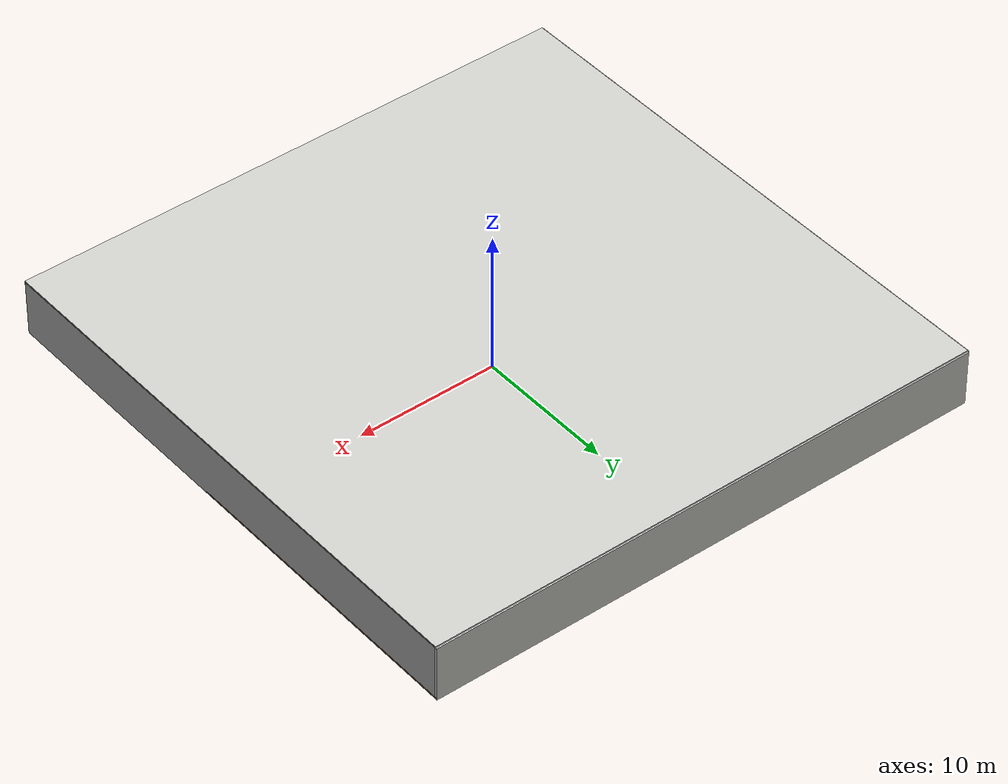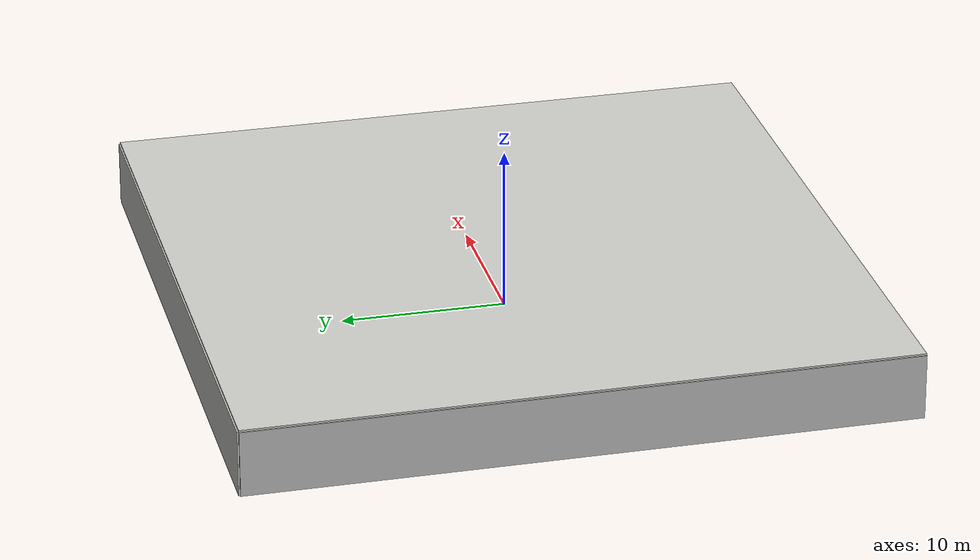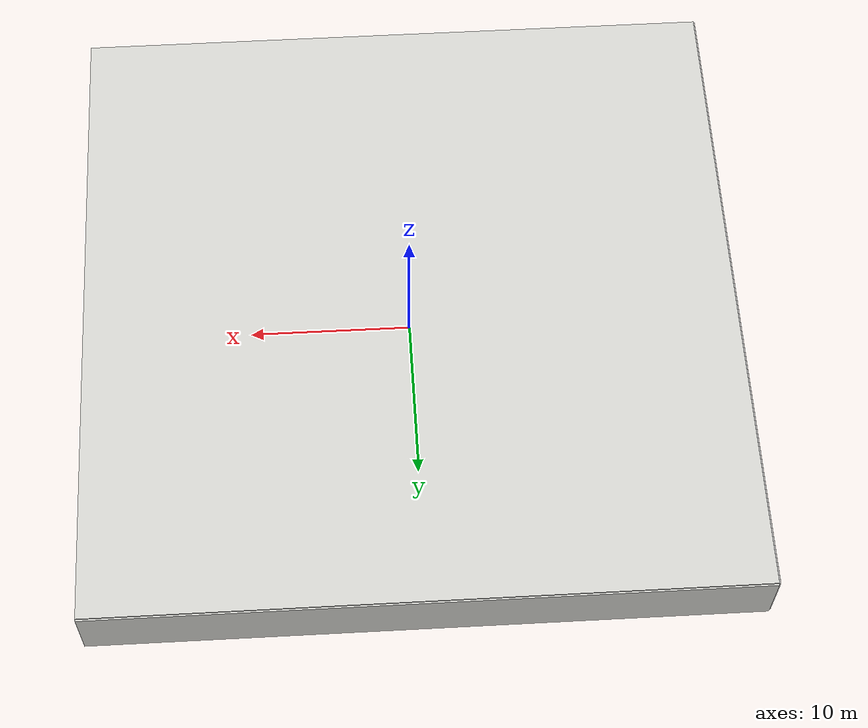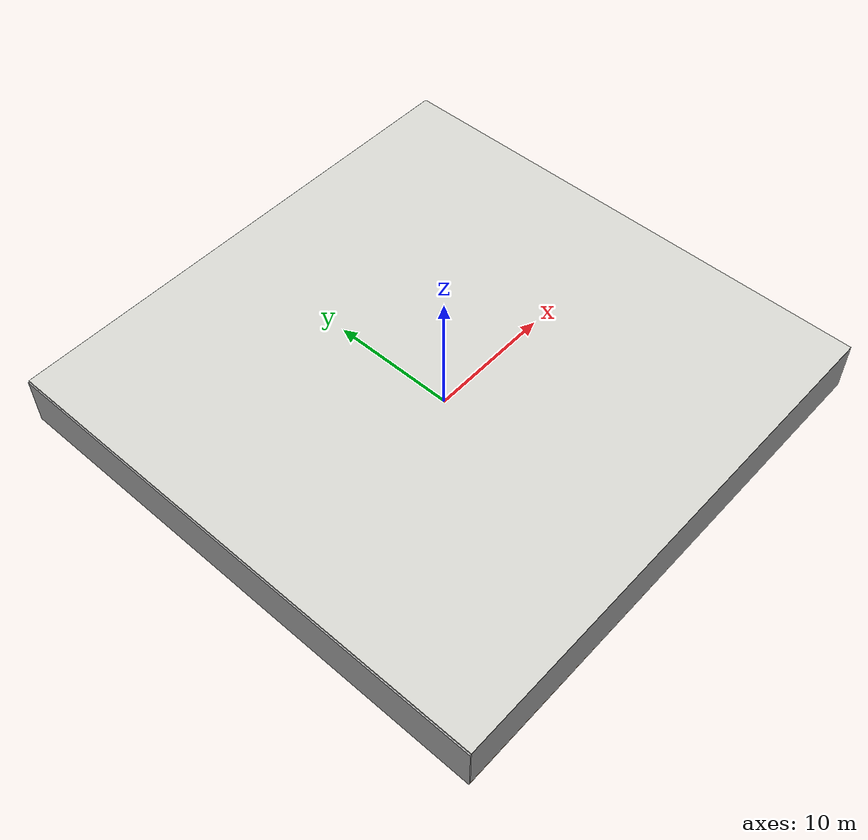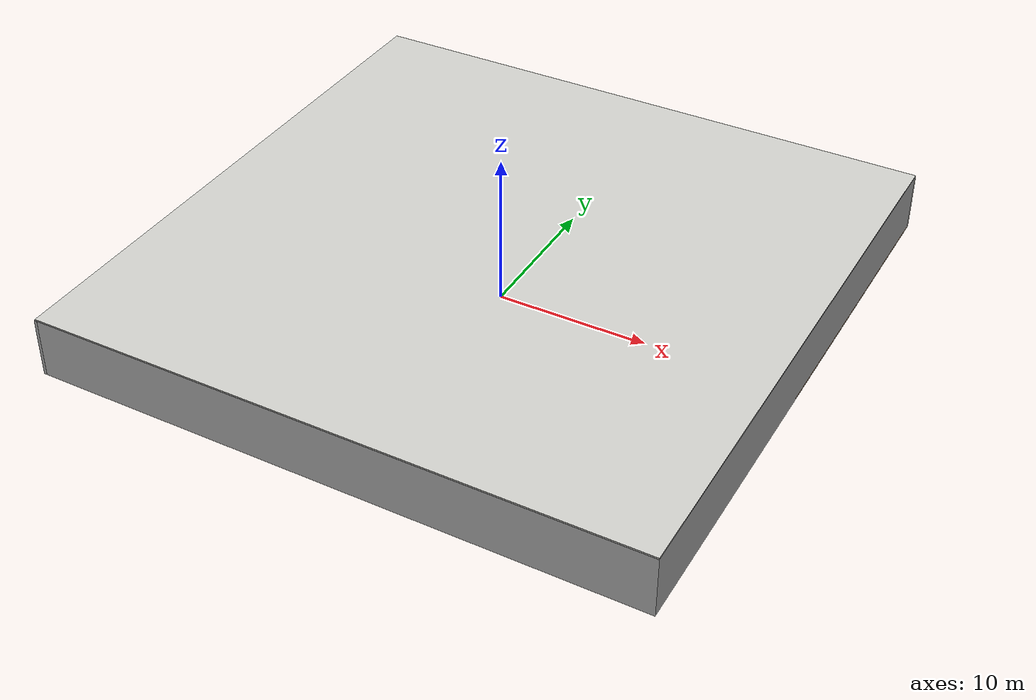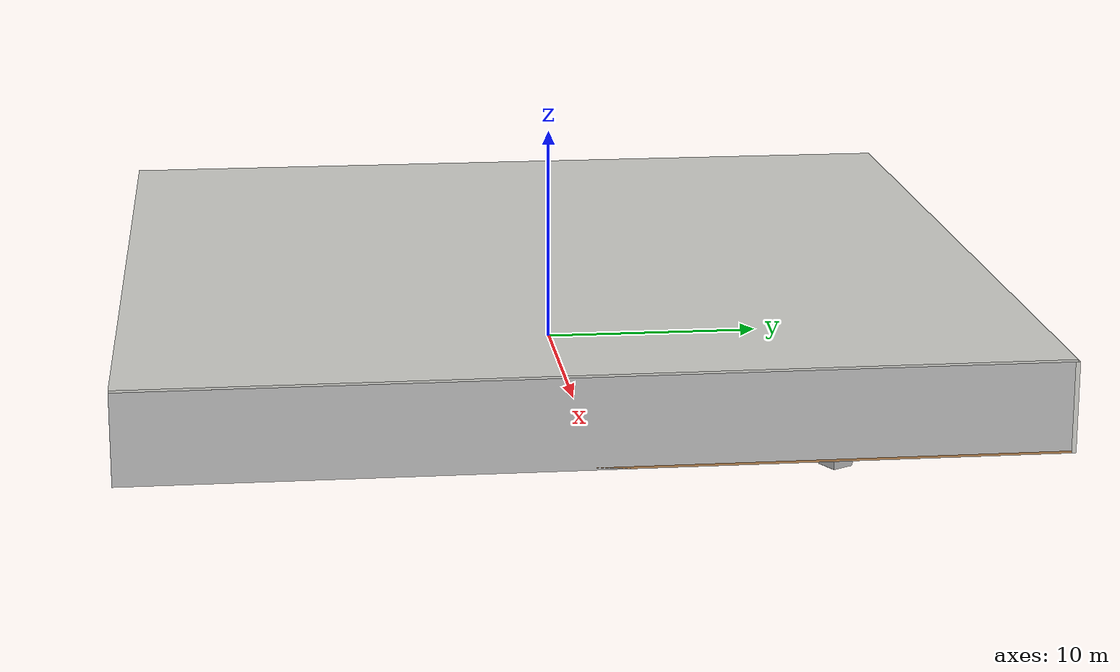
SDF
<sdf version="1.4">
 <world name="default">
  <physics type="ode">
   <max_step_size>0.001</max_step_size>
   <real_time_factor>1</real_time_factor>
   <real_time_update_rate>1000</real_time_update_rate>
   <gravity>0 0 -9.8</gravity>
  </physics>
  <scene><ambient>0.4 0.4 0.4 1</ambient><background>0.7 0.7 0.7 1</background><shadows>1</shadows></scene>
  <model name="Surrounding">
   <static>1</static>
   <link name="Ceiling">
    <collision name="Ceiling_Collision"><geometry><box><size>40 40 0.1</size></box></geometry></collision>
    <visual name="Ceiling_Visual">
     <geometry><box><size>40 40 0.1</size></box></geometry>
     <material>
      <script><uri>file://media/materials/scripts/gazebo.material</uri><name>Gazebo/CeilingTiled</name></script>
     </material>
    </visual>
    <pose>0 0 4.05 0 0 0</pose>
   </link>
   <link name="Wall_South">
    <collision name="Wall_South_Collision">
     <geometry><box><size>40 0 4</size></box></geometry>
     <pose>0 0 2 0 -0 0</pose>
    </collision>
    <visual name="Wall_South_Visual">
     <pose>0 0 2 0 -0 0</pose>
     <geometry><box><size>40 0 4</size></box></geometry>
     <material>
      <script><uri>file://media/materials/scripts/gazebo.material</uri><name>Gazebo/LightOff</name></script>
     </material>
    </visual>
    <velocity_decay><linear>0</linear><angular>0</angular></velocity_decay>
    <pose>0 -20 0 0 -0 0</pose>
   </link>
   <link name="Wall_East">
    <collision name="Wall_21_Collision">
     <geometry><box><size>40 0 4</size></box></geometry>
     <pose>0 0 2 0 -0 0</pose>
    </collision>
    <visual name="Wall_21_Visual">
     <pose>0 0 2 0 -0 0</pose>
     <geometry><box><size>40 0 4</size></box></geometry>
     <material>
      <script><uri>file://media/materials/scripts/gazebo.material</uri><name>Gazebo/JointAnchor</name></script>
     </material>
    </visual>
    <velocity_decay><linear>0</linear><angular>0</angular></velocity_decay>
    <pose>20 0 0 0 -0 1.5708</pose>
   </link>
   <link name="Wall_North">
    <collision name="Wall_22_Collision">
     <geometry><box><size>40 0.2 4</size></box></geometry>
     <pose>0 0 2 0 -0 0</pose>
    </collision>
    <visual name="Wall_22_Visual">
     <pose>0 0 2 0 -0 0</pose>
     <geometry><box><size>40 0.2 4</size></box></geometry>
     <material>
      <script><uri>file://media/materials/scripts/gazebo.material</uri><name>Gazebo/CeilingTiled</name></script>
     </material>
    </visual>
    <velocity_decay><linear>0</linear><angular>0</angular></velocity_decay>
    <pose>0 20 0 0 -0 0</pose>
   </link>
   <link name="Wall_West">
    <collision name="Wall_23_Collision">
     <geometry><box><size>40 0.2 4</size></box></geometry>
     <pose>0 0 2 0 -0 0</pose>
    </collision>
    <visual name="Wall_23_Visual">
     <pose>0 0 2 0 -0 0</pose>
     <geometry><box><size>40 0.2 4</size></box></geometry>
     <material>
      <script><uri>file://media/materials/scripts/gazebo.material</uri><name>Gazebo/LightOn</name></script>
     </material>
    </visual>
    <velocity_decay><linear>0</linear><angular>0</angular></velocity_decay>
    <pose>-20 0 0 0 0 -1.5708</pose>
   </link>
   <link name="Ground_link">
    <collision name="collision">
     <pose>0 0 .05 0 -0 0</pose>
     <geometry><box><size>40 40 0.1</size></box></geometry>
    </collision>
    <visual name="visual">
     <pose>0 0 .05 0 -0 0</pose>
     <geometry><box><size>40 40 0.1</size></box></geometry>
     <material>
      <script><uri>file://media/materials/scripts/gazebo.material</uri><name>Gazebo/Wood</name></script>
     </material>
    </visual>
   </link>
   <static>1</static>
  </model>
  <spherical_coordinates>
   <surface_model>EARTH_WGS84</surface_model>
   <latitude_deg>0</latitude_deg>
   <longitude_deg>0</longitude_deg>
   <elevation>0</elevation>
   <heading_deg>0</heading_deg>
  </spherical_coordinates>
  <light name="lightball_0" type="diffuse">
   <diffuse>0.8 0.8 0.8 1</diffuse>
   <specular>0.2 0.2 0.2 1</specular>
   <attenuation>
    <range>100</range>
    <constant>0.7</constant>
    <linear>0.01</linear>
    <quadratic>0.001</quadratic>
   </attenuation>
   <direction>-0.5 0.1 -0.9</direction>
   <pose>2.92026676368 19.5184003819 2.55636143265 0 0 0</pose>
  </light>
  <light name="lightball_1" type="diffuse">
   <diffuse>0.8 0.8 0.8 1</diffuse>
   <specular>0.2 0.2 0.2 1</specular>
   <attenuation>
    <range>100</range>
    <constant>0.7</constant>
    <linear>0.01</linear>
    <quadratic>0.001</quadratic>
   </attenuation>
   <direction>-0.5 0.1 -0.9</direction>
   <pose>17.2706579813 11.3291383494 0.99025821138 0 0 0</pose>
  </light>
  <light name="lightball_2" type="diffuse">
   <diffuse>0.8 0.8 0.8 1</diffuse>
   <specular>0.2 0.2 0.2 1</specular>
   <attenuation>
    <range>100</range>
    <constant>0.7</constant>
    <linear>0.01</linear>
    <quadratic>0.001</quadratic>
   </attenuation>
   <direction>-0.5 0.1 -0.9</direction>
   <pose>15.7505685002 -4.34676751769 1.6638702258 0 0 0</pose>
  </light>
  <light name="lightball_3" type="diffuse">
   <diffuse>0.8 0.8 0.8 1</diffuse>
   <specular>0.2 0.2 0.2 1</specular>
   <attenuation>
    <range>100</range>
    <constant>0.7</constant>
    <linear>0.01</linear>
    <quadratic>0.001</quadratic>
   </attenuation>
   <direction>-0.5 0.1 -0.9</direction>
   <pose>5.44416368777 -17.8752258526 0.733696636801 0 0 0</pose>
  </light>
  <light name="lightball_4" type="diffuse">
   <diffuse>0.8 0.8 0.8 1</diffuse>
   <specular>0.2 0.2 0.2 1</specular>
   <attenuation>
    <range>100</range>
    <constant>0.7</constant>
    <linear>0.01</linear>
    <quadratic>0.001</quadratic>
   </attenuation>
   <direction>-0.5 0.1 -0.9</direction>
   <pose>14.5394977501 3.48727534909 3.37731246864 0 0 0</pose>
  </light>
  <light name="lightball_5" type="diffuse">
   <diffuse>0.8 0.8 0.8 1</diffuse>
   <specular>0.2 0.2 0.2 1</specular>
   <attenuation>
    <range>100</range>
    <constant>0.7</constant>
    <linear>0.01</linear>
    <quadratic>0.001</quadratic>
   </attenuation>
   <direction>-0.5 0.1 -0.9</direction>
   <pose>-12.2479660641 -12.0475704633 3.0909698838 0 0 0</pose>
  </light>
  <light name="lightball_6" type="diffuse">
   <diffuse>0.8 0.8 0.8 1</diffuse>
   <specular>0.2 0.2 0.2 1</specular>
   <attenuation>
    <range>100</range>
    <constant>0.7</constant>
    <linear>0.01</linear>
    <quadratic>0.001</quadratic>
   </attenuation>
   <direction>-0.5 0.1 -0.9</direction>
   <pose>4.93133764741 1.79559992789 0.597510756978 0 0 0</pose>
  </light>
  <light name="lightball_7" type="diffuse">
   <diffuse>0.8 0.8 0.8 1</diffuse>
   <specular>0.2 0.2 0.2 1</specular>
   <attenuation>
    <range>100</range>
    <constant>0.7</constant>
    <linear>0.01</linear>
    <quadratic>0.001</quadratic>
   </attenuation>
   <direction>-0.5 0.1 -0.9</direction>
   <pose>14.5601978182 3.18280508007 2.58831084529 0 0 0</pose>
  </light>
  <light name="lightball_8" type="diffuse">
   <diffuse>0.8 0.8 0.8 1</diffuse>
   <specular>0.2 0.2 0.2 1</specular>
   <attenuation>
    <range>100</range>
    <constant>0.7</constant>
    <linear>0.01</linear>
    <quadratic>0.001</quadratic>
   </attenuation>
   <direction>-0.5 0.1 -0.9</direction>
   <pose>-16.4940596549 -10.7516965378 0.615939376459 0 0 0</pose>
  </light>
  <light name="lightball_9" type="diffuse">
   <diffuse>0.8 0.8 0.8 1</diffuse>
   <specular>0.2 0.2 0.2 1</specular>
   <attenuation>
    <range>100</range>
    <constant>0.7</constant>
    <linear>0.01</linear>
    <quadratic>0.001</quadratic>
   </attenuation>
   <direction>-0.5 0.1 -0.9</direction>
   <pose>17.4547188879 2.41802911049 2.14158986821 0 0 0</pose>
  </light>
  <light name="lightball_10" type="diffuse">
   <diffuse>0.8 0.8 0.8 1</diffuse>
   <specular>0.2 0.2 0.2 1</specular>
   <attenuation>
    <range>100</range>
    <constant>0.7</constant>
    <linear>0.01</linear>
    <quadratic>0.001</quadratic>
   </attenuation>
   <direction>-0.5 0.1 -0.9</direction>
   <pose>8.57818184394 12.2882138898 2.52674985767 0 0 0</pose>
  </light>
  <include>
   <uri>model://construction_cone</uri>
   <pose>-16.623393324 -15.011979856 0 0 0 3.09564785683</pose>
  </include>
  <include><uri>model://cabinet</uri><pose>-17.0481768481 -10.8181238503 0 0 0 1.60029334558</pose></include>
  <include>
   <uri>model://robocup_3Dsim_goal</uri>
   <pose>-18.47893827 15.3269568088 0 0 0 0.493746853206</pose>
  </include>
  <include>
   <uri>model://textured_shapes</uri>
   <pose>-13.7078945035 -12.3180585669 0 0 0 2.21680740833</pose>
  </include>
  <include><uri>model://cabinet</uri><pose>-12.196857961 -11.9070880299 0 0 0 2.28147639131</pose></include>
  <include>
   <uri>model://construction_cone</uri>
   <pose>-12.4733763554 -0.581891602369 0 0 0 0.556545866699</pose>
  </include>
  <include><uri>model://cabinet</uri><pose>-7.58439858576 -11.1513145765 0 0 0 2.85648641658</pose></include>
  <include>
   <uri>model://construction_cone</uri>
   <pose>-8.94926728494 2.95101091025 0 0 0 2.42673699576</pose>
  </include>
  <include>
   <uri>model://textured_shapes</uri>
   <pose>-8.56297820017 5.32931597269 0 0 0 2.91251805446</pose>
  </include>
  <include>
   <uri>model://textured_shapes</uri>
   <pose>-7.30589618064 13.6990436155 0 0 0 2.43698489047</pose>
  </include>
  <include>
   <uri>model://construction_cone</uri>
   <pose>-6.33643954436 -12.6198128418 0 0 0 0.296234167199</pose>
  </include>
  <include><uri>model://table</uri><pose>-5.51446408665 16.0039506923 0 0 0 2.53302016418</pose></include>
  <include><uri>model://cabinet</uri><pose>-1.84454670553 12.1102583214 0 0 0 0.813727730834</pose></include>
  <include><uri>model://table</uri><pose>0.10803843554 -0.576453091576 0 0 0 0.953530022601</pose></include>
  <include><uri>model://table</uri><pose>0.592781123309 7.38938306303 0 0 0 0.921779112196</pose></include>
  <include><uri>model://table</uri><pose>0.357847193283 12.3301076942 0 0 0 0.351659653305</pose></include>
  <include>
   <uri>model://textured_shapes</uri>
   <pose>7.5098933632 -11.2346036159 0 0 0 2.67375766171</pose>
  </include>
  <include>
   <uri>model://robocup_3Dsim_goal</uri>
   <pose>6.35301214741 -0.127735127427 0 0 0 2.79639869071</pose>
  </include>
  <include>
   <uri>model://robocup_3Dsim_goal</uri>
   <pose>9.33776689384 -4.70859294971 0 0 0 1.8217993019</pose>
  </include>
  <include><uri>model://cabinet</uri><pose>8.93056573993 1.3142166343 0 0 0 2.34757028066</pose></include>
  <include>
   <uri>model://robocup_3Dsim_goal</uri>
   <pose>9.80369925946 15.2471117763 0 0 0 0.0916752370013</pose>
  </include>
  <include><uri>model://table</uri><pose>13.4058930435 3.76645606007 0 0 0 2.49168680886</pose></include>
  <include>
   <uri>model://textured_shapes</uri>
   <pose>17.6035930951 9.3432269356 0 0 0 2.06594141177</pose>
  </include>
 </world>
</sdf>

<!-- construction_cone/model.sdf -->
<sdf version="1.5">
  <model name="Construction Cone">
    <link name="link">
      <collision name="collision">
        <geometry>
          <mesh>
            <scale>10 10 10</scale>
            <uri>file://isr-testbed/construction_cone/meshes/construction_cone.dae</uri>
          </mesh>
        </geometry>
      </collision>
      <visual name="visual">
        <geometry>
          <mesh>
            <scale>10 10 10</scale>
            <uri>file://isr-testbed/construction_cone/meshes/construction_cone.dae</uri>
          </mesh>
        </geometry>
      </visual>
    </link>
  </model>
</sdf>

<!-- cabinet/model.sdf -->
<sdf version="1.5">
  <model name="cabinet">
    <static>true</static>
    <link name="cabinet_bottom_plate">
      <inertial>
        <pose>0 0 -1 0 0 0</pose>
        <inertia>
          <ixx>2.050000</ixx>
          <ixy>0</ixy>
          <ixz>0</ixz>
          <iyy>2.050000</iyy>
          <iyz>0</iyz>
          <izz>2.050000</izz>
        </inertia>
        <mass>25.000000</mass>
      </inertial>
      <collision name="cabinet_bottom_plate_geom">
        <pose>0 0 0.010000 0 0 0</pose>
        <geometry>
          <box>
            <size>0.450000 0.450000 0.020000</size>
          </box>
        </geometry>
      </collision>
      <visual name="cabinet_bottom_plate_geom_visual">
        <pose>0 0 0.010000 0 0 0</pose>
        <geometry>
          <box>
            <size>0.450000 0.450000 0.020000</size>
          </box>
        </geometry>
        <material>
          <script>
            <uri>model://media/materials/scripts/gazebo.material</uri>
            <name>Gazebo/Wood</name>
          </script>
        </material>
      </visual>
      <collision name="cabinet_bottom_plate_geom_cabinet_back_plate">
        <pose>0.235000 0 0.510000 0 0 0</pose>
        <geometry>
          <box>
            <size>0.020000 0.450000 1.020000</size>
          </box>
        </geometry>
      </collision>
      <visual name="cabinet_bottom_plate_geom_cabinet_back_plate_visual">
        <pose>0.235000 0 0.510000 0 0 0</pose>
        <geometry>
          <box>
            <size>0.020000 0.450000 1.020000</size>
          </box>
        </geometry>
        <material>
          <script>
            <uri>model://media/materials/scripts/gazebo.material</uri>
            <name>Gazebo/Wood</name>
          </script>
        </material>
      </visual>
      <collision name="cabinet_bottom_plate_geom_cabinet_left_plate">
        <pose>0 0.235000 0.510000 0 0 0</pose>
        <geometry>
          <box>
            <size>0.450000 0.020000 1.020000</size>
          </box>
        </geometry>
      </collision>
      <visual name="cabinet_bottom_plate_geom_cabinet_left_plate_visual">
        <pose>0 0.235000 0.510000 0 0 0</pose>
        <geometry>
          <box>
            <size>0.450000 0.020000 1.020000</size>
          </box>
        </geometry>
        <material>
          <script>
            <uri>model://media/materials/scripts/gazebo.material</uri>
            <name>Gazebo/Wood</name>
          </script>
        </material>
      </visual>
      <collision name="cabinet_bottom_plate_geom_cabinet_middle_plate">
        <pose>0 0 0.510000 0 0 0</pose>
        <geometry>
          <box>
            <size>0.450000 0.450000 0.020000</size>
          </box>
        </geometry>
      </collision>
      <visual name="cabinet_bottom_plate_geom_cabinet_middle_plate_visual">
        <pose>0 0 0.510000 0 0 0</pose>
        <geometry>
          <box>
            <size>0.450000 0.450000 0.020000</size>
          </box>
        </geometry>
        <material>
          <script>
            <uri>model://media/materials/scripts/gazebo.material</uri>
            <name>Gazebo/Wood</name>
          </script>
        </material>
      </visual>
      <collision name="cabinet_bottom_plate_geom_cabinet_right_plate">
        <pose>0 -0.235000 0.510000 0 0 0</pose>
        <geometry>
          <box>
            <size>0.450000 0.020000 1.020000</size>
          </box>
        </geometry>
      </collision>
      <visual name="cabinet_bottom_plate_geom_cabinet_right_plate_visual">
        <pose>0 -0.235000 0.510000 0 0 0</pose>
        <geometry>
          <box>
            <size>0.450000 0.020000 1.020000</size>
          </box>
        </geometry>
        <material>
          <script>
            <uri>model://media/materials/scripts/gazebo.material</uri>
            <name>Gazebo/Wood</name>
          </script>
        </material>
      </visual>
      <collision name="cabinet_bottom_plate_geom_cabinet_top_plate">
        <pose>0 0 1.010000 0 0 0</pose>
        <geometry>
          <box>
            <size>0.450000 0.450000 0.020000</size>
          </box>
        </geometry>
      </collision>
      <visual name="cabinet_bottom_plate_geom_cabinet_top_plate_visual">
        <pose>0 0 1.010000 0 0 0</pose>
        <geometry>
          <box>
            <size>0.450000 0.450000 0.020000</size>
          </box>
        </geometry>
        <material>
          <script>
            <uri>model://media/materials/scripts/gazebo.material</uri>
            <name>Gazebo/Wood</name>
          </script>
        </material>
      </visual>
    </link>
  </model>
</sdf>

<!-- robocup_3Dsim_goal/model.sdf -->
<sdf version="1.5">
  <model name="robocup_3d_goal">
    <static>true</static>
    <link name="left_post">
      <pose>0 1.05 0.45 0 0 0</pose>
      <collision name="collision">
        <geometry>
          <cylinder>
            <radius>0.05</radius>
            <length>0.9</length>
          </cylinder>
        </geometry>
      </collision>
      <visual name="visual">
        <geometry>
          <cylinder>
            <radius>0.05</radius>
            <length>0.9</length>
          </cylinder>
        </geometry>
        <material>
          <script>
            <uri>file://media/materials/scripts/gazebo.material</uri>
            <name>Gazebo/ZincYellow</name>
          </script>
        </material>
      </visual>
    </link>
    <link name="left_support_horiz_lower">
      <pose>0.30 1.05 0.01 0 0 0</pose>
      <collision name="collision">
        <geometry>
          <box>
            <size>0.50 0.02 0.02</size>
          </box>
        </geometry>
      </collision>
      <visual name="visual">
        <geometry>
          <box>
            <size>0.50 0.02 0.02</size>
          </box>
        </geometry>
        <material>
          <script>
            <uri>file://media/materials/scripts/gazebo.material</uri>
            <name>Gazebo/White</name>
          </script>
        </material>
      </visual>
    </link>
    <link name="left_support_horiz_upper">
      <pose>0.30 1.05 0.79 0 0 0</pose>
      <collision name="collision">
        <geometry>
          <box>
            <size>0.50 0.02 0.02</size>
          </box>
        </geometry>
      </collision>
      <visual name="visual">
        <geometry>
          <box>
            <size>0.50 0.02 0.02</size>
          </box>
        </geometry>
        <material>
          <script>
            <uri>file://media/materials/scripts/gazebo.material</uri>
            <name>Gazebo/White</name>
          </script>
        </material>
      </visual>
    </link>
    <link name="left_support_vertical">
      <pose>0.56 1.05 0.4 0 1.5708 0</pose>
      <collision name="collision">
        <geometry>
          <box>
            <size>0.80 0.02 0.02</size>
          </box>
        </geometry>
      </collision>
      <visual name="visual">
        <geometry>
          <box>
            <size>0.80 0.02 0.02</size>
          </box>
        </geometry>
        <material>
          <script>
            <uri>file://media/materials/scripts/gazebo.material</uri>
            <name>Gazebo/White</name>
          </script>
        </material>
      </visual>
    </link>
    <link name="right_support_horiz_lower">
      <pose>0.30 -1.05 0.01 0 0 0</pose>
      <collision name="collision">
        <geometry>
          <box>
            <size>0.50 0.02 0.02</size>
          </box>
        </geometry>
      </collision>
      <visual name="visual">
        <geometry>
          <box>
            <size>0.50 0.02 0.02</size>
          </box>
        </geometry>
        <material>
          <script>
            <uri>file://media/materials/scripts/gazebo.material</uri>
            <name>Gazebo/White</name>
          </script>
        </material>
      </visual>
    </link>
    <link name="right_support_horiz_upper">
      <pose>0.30 -1.05 0.79 0 0 0</pose>
      <collision name="collision">
        <geometry>
          <box>
            <size>0.50 0.02 0.02</size>
          </box>
        </geometry>
      </collision>
      <visual name="visual">
        <geometry>
          <box>
            <size>0.50 0.02 0.02</size>
          </box>
        </geometry>
        <material>
          <script>
            <uri>file://media/materials/scripts/gazebo.material</uri>
            <name>Gazebo/White</name>
          </script>
        </material>
      </visual>
    </link>
    <link name="right_support_vertical">
      <pose>0.56 -1.05 0.4 0 1.5708 0</pose>
      <collision name="collision">
        <geometry>
          <box>
            <size>0.80 0.02 0.02</size>
          </box>
        </geometry>
      </collision>
      <visual name="visual">
        <geometry>
          <box>
            <size>0.80 0.02 0.02</size>
          </box>
        </geometry>
        <material>
          <script>
            <uri>file://media/materials/scripts/gazebo.material</uri>
            <name>Gazebo/White</name>
          </script>
        </material>
      </visual>
    </link>
    <link name="center_support_horiz_lower">
      <pose>0.56 0 0.01 0 1.5708 0</pose>
      <collision name="collision">
        <geometry>
          <box>
            <size>0.02 2.08 0.02</size>
          </box>
        </geometry>
      </collision>
      <visual name="visual">
        <geometry>
          <box>
            <size>0.02 2.08 0.02</size>
          </box>
        </geometry>
        <material>
          <script>
            <uri>file://media/materials/scripts/gazebo.material</uri>
            <name>Gazebo/White</name>
          </script>
        </material>
      </visual>
    </link>
    <link name="center_support_horiz_upper">
      <pose>0.56 0 0.79 0 1.5708 0</pose>
      <collision name="collision">
        <geometry>
          <box>
            <size>0.02 2.08 0.02</size>
          </box>
        </geometry>
      </collision>
      <visual name="visual">
        <geometry>
          <box>
            <size>0.02 2.08 0.02</size>
          </box>
        </geometry>
        <material>
          <script>
            <uri>file://media/materials/scripts/gazebo.material</uri>
            <name>Gazebo/White</name>
          </script>
        </material>
      </visual>
    </link>
    <link name="right_post">
      <pose>0 -1.05 0.45 0 0 0</pose>
      <collision name="collision">
        <geometry>
          <cylinder>
            <radius>0.05</radius>
            <length>0.9</length>
          </cylinder>
        </geometry>
      </collision>
      <visual name="visual">
        <geometry>
          <cylinder>
            <radius>0.05</radius>
            <length>0.9</length>
          </cylinder>
        </geometry>
        <material>
          <script>
            <uri>file://media/materials/scripts/gazebo.material</uri>
            <name>Gazebo/ZincYellow</name>
          </script>
        </material>
      </visual>
    </link>
    <link name="crossbar">
      <pose>0 0 0.85 1.57 1.57 0</pose>
      <collision name="collision">
        <geometry>
          <cylinder>
            <radius>0.05</radius>
            <length>2.0</length>
          </cylinder>
        </geometry>
      </collision>
      <visual name="visual">
        <geometry>
          <cylinder>
            <radius>0.05</radius>
            <length>2.0</length>
          </cylinder>
        </geometry>
        <material>
          <script>
            <uri>file://media/materials/scripts/gazebo.material</uri>
            <name>Gazebo/ZincYellow</name>
          </script>
        </material>
      </visual>
    </link>
    <link name="center_net">
      <pose>0.56 0 0.40 0 0 0</pose>
      <collision name="collision">
        <geometry>
          <box>
            <size>0.01 2.1 0.80</size>
          </box>
        </geometry>
      </collision>
      <visual name="visual">
        <geometry>
          <box>
            <size>0.01 2.1 0.80</size>
          </box>
        </geometry>
        <material>
          <script>
            <uri>model://../model_source/models/robocup09_spl_field/materials/scripts/</uri>
            <uri>model://../model_source/models/robocup09_spl_field/materials/textures/</uri>
            <name>RoboCup/Net</name>
          </script>
        </material>
      </visual>
    </link>
    <link name="left_net">
      <pose>0.30 1.05 0.40 0 0 0</pose>
      <collision name="collision">
        <geometry>
          <box>
            <size>0.50 0.01 0.76</size>
          </box>
        </geometry>
      </collision>
      <visual name="visual">
        <geometry>
          <box>
            <size>0.50 0.01 0.76</size>
          </box>
        </geometry>
        <material>
          <script>
            <uri>model://../model_source/models/robocup09_spl_field/materials/scripts/</uri>
            <uri>model://../model_source/models/robocup09_spl_field/materials/textures/</uri>
            <name>RoboCup/Net</name>
          </script>
        </material>
      </visual>
    </link>
    <link name="right_net">
      <pose>0.30 -1.05 0.40 0 0 0</pose>
      <collision name="collision">
        <geometry>
          <box>
            <size>0.50 0.01 0.76</size>
          </box>
        </geometry>
      </collision>
      <visual name="visual">
        <geometry>
          <box>
            <size>0.50 0.01 0.76</size>
          </box>
        </geometry>
        <material>
          <script>
            <uri>model://../model_source/models/robocup09_spl_field/materials/scripts/</uri>
            <uri>model://../model_source/models/robocup09_spl_field/materials/textures/</uri>
            <name>RoboCup/Net</name>
          </script>
        </material>
      </visual>
    </link>
  </model>
</sdf>

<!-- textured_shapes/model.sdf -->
<sdf version="1.6">
  <model name="textured_shapes">
    <pose>0 0 0.5 0 0 0</pose>
    <link name="box">
      <pose>0 -1.5 0 0 0 0</pose>
      <collision name="collision">
        <geometry>
          <box>
            <size>1 1 1</size>
          </box>
        </geometry>
      </collision>
      <visual name="visual">
        <geometry>
          <box>
            <size>1 1 1</size>
          </box>
        </geometry>
        <material>
          <script>
            <uri>model://../model_source/models/textured_shapes/materials/scripts</uri>
            <uri>model://../model_source/models/textured_shapes/materials/textures</uri>
            <name>TexturedShape/Squares</name>
          </script>
        </material>
      </visual>
    </link>
    <link name="sphere">
      <collision name="collision">
        <geometry>
          <sphere>
            <radius>0.5</radius>
          </sphere>
        </geometry>
      </collision>
      <visual name="visual">
        <geometry>
          <sphere>
            <radius>0.5</radius>
          </sphere>
        </geometry>
        <material>
          <script>
            <uri>model://../model_source/models/textured_shapes/materials/scripts</uri>
            <uri>model://../model_source/models/textured_shapes/materials/textures</uri>
            <name>TexturedShape/Squares</name>
          </script>
        </material>
      </visual>
    </link>
    <link name="cylinder">
      <pose>0 1.5 0 0 0 0</pose>
      <collision name="collision">
        <geometry>
          <cylinder>
            <radius>0.5</radius>
            <length>1</length>
          </cylinder>
        </geometry>
      </collision>
      <visual name="visual">
        <geometry>
          <cylinder>
            <radius>0.5</radius>
            <length>1</length>
          </cylinder>
        </geometry>
        <material>
          <script>
            <uri>model://../model_source/models/textured_shapes/materials/scripts</uri>
            <uri>model://../model_source/models/textured_shapes/materials/textures</uri>
            <name>TexturedShape/Squares</name>
          </script>
        </material>
      </visual>
    </link>
  </model>
</sdf>

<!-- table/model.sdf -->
<sdf version="1.5">
  <model name="table">
    <static>true</static>
    <link name="link">
      <collision name="surface">
        <pose>0 0 1.0 0 0 0</pose>
        <geometry>
          <box>
            <size>1.5 0.8 0.03</size>
          </box>
        </geometry>
        <surface>
          <friction>
            <ode>
              <mu>0.6</mu>
              <mu2>0.6</mu2>
            </ode>
          </friction>
        </surface>
      </collision>
      <visual name="visual1">
        <pose>0 0 1.0 0 0 0</pose>
        <geometry>
          <box>
            <size>1.5 0.8 0.03</size>
          </box>
        </geometry>
        <material>
          <script>
            <uri>model://media/materials/scripts/gazebo.material</uri>
            <name>Gazebo/Wood</name>
          </script>
        </material>
      </visual>
      <collision name="front_left_leg">
        <pose>0.68 0.38 0.5 0 0 0</pose>
        <geometry>
          <cylinder>
            <radius>0.02</radius>
            <length>1.0</length>
          </cylinder>
        </geometry>
      </collision>
      <visual name="front_left_leg">
        <pose>0.68 0.38 0.5 0 0 0</pose>
        <geometry>
          <cylinder>
            <radius>0.02</radius>
            <length>1.0</length>
          </cylinder>
        </geometry>
        <material>
          <script>
            <uri>model://media/materials/scripts/gazebo.material</uri>
            <name>Gazebo/Grey</name>
          </script>
        </material>
      </visual>
      <collision name="front_right_leg">
        <pose>0.68 -0.38 0.5 0 0 0</pose>
        <geometry>
          <cylinder>
            <radius>0.02</radius>
            <length>1.0</length>
          </cylinder>
        </geometry>
      </collision>
      <visual name="front_right_leg">
        <pose>0.68 -0.38 0.5 0 0 0</pose>
        <geometry>
          <cylinder>
            <radius>0.02</radius>
            <length>1.0</length>
          </cylinder>
        </geometry>
        <material>
          <script>
            <uri>model://media/materials/scripts/gazebo.material</uri>
            <name>Gazebo/Grey</name>
          </script>
        </material>
      </visual>
      <collision name="back_right_leg">
        <pose>-0.68 -0.38 0.5 0 0 0</pose>
        <geometry>
          <cylinder>
            <radius>0.02</radius>
            <length>1.0</length>
          </cylinder>
        </geometry>
      </collision>
      <visual name="back_right_leg">
        <pose>-0.68 -0.38 0.5 0 0 0</pose>
        <geometry>
          <cylinder>
            <radius>0.02</radius>
            <length>1.0</length>
          </cylinder>
        </geometry>
        <material>
          <script>
            <uri>model://media/materials/scripts/gazebo.material</uri>
            <name>Gazebo/Grey</name>
          </script>
        </material>
      </visual>
      <collision name="back_left_leg">
        <pose>-0.68 0.38 0.5 0 0 0</pose>
        <geometry>
          <cylinder>
            <radius>0.02</radius>
            <length>1.0</length>
          </cylinder>
        </geometry>
      </collision>
      <visual name="back_left_leg">
        <pose>-0.68 0.38 0.5 0 0 0</pose>
        <geometry>
          <cylinder>
            <radius>0.02</radius>
            <length>1.0</length>
          </cylinder>
        </geometry>
        <material>
          <script>
            <uri>model://media/materials/scripts/gazebo.material</uri>
            <name>Gazebo/Grey</name>
          </script>
        </material>
      </visual>
    </link>
  </model>
</sdf>
